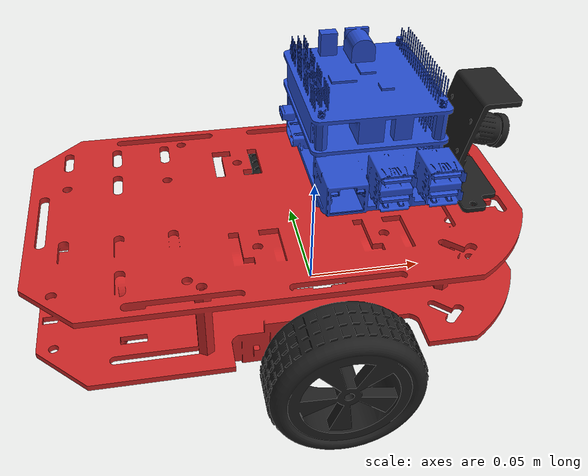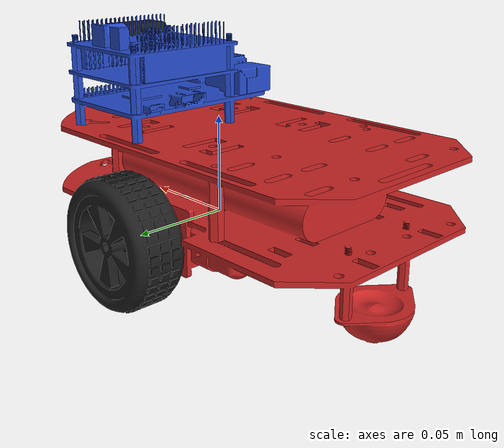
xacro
<?xml version="1.0"?>
<robot name="duckiebot" xmlns:xacro="http://www.ros.org/wiki/xacro">

  <!-- Properties -->
  <xacro:property name="cameraSize" value="0.01"/>
  <xacro:property name="cameraMass" value="0.01"/>
  <xacro:property name="compuMass" value="0.01"/>
  <xacro:property name="PI" value="3.1415926535897931"/>

  <!-- Chassis -->
  <xacro:property name="chassisHeight" value="0.0623"/>
  <xacro:property name="chassisLength" value="0.198"/>
  <xacro:property name="chassisWidth" value="0.119"/>
  <xacro:property name="chassisMass" value="0.15"/>

  <!-- Caster -->
  <xacro:property name="casterRadius" value="0.021"/>
  <xacro:property name="casterMass" value="0.09"/>
  <xacro:property name="casterOffsetX" value="0.091"/>

  <!-- Wheels -->
  <xacro:property name="wheelWidth" value="0.026"/>
  <xacro:property name="wheelRadius" value="0.032"/>
  <xacro:property name="wheelMass" value="0.05"/>
  <xacro:property name="wheelOffsetY" value="0.037"/>

  <!-- Gazebo Materials -->
  <xacro:include filename="$(find duckiebot_description)/urdf/materials.xacro"/>
  <xacro:include filename="$(find duckiebot_description)/urdf/macros.xacro"/>
  <xacro:include filename="$(find duckiebot_description)/urdf/duckiebot.gazebo"/>

  <link name="base_link"/>

  <joint name="base_link_to_chassis" type="fixed">
    <parent link="base_link"/>
    <child link="chassis"/>
    <origin xyz="0 0 0" rpy="0 0 0"/>
  </joint>

  <!-- ======================= CHASSIS ======================= -->
  <link name="chassis">
    <inertial>
      <mass value="${chassisMass}"/>
      <origin xyz="-0.05 0 0"/>
      <inertia ixx="1.56167e-05" ixy="0" ixz="0"
               iyy="1.56167e-05" iyz="0"
               izz="2.56e-05"/>
    </inertial>

    <visual>
      <origin xyz="0 0 0"/>
      <geometry>
        <mesh filename="package://duckiebot_description/meshes/duckiebotFrame.dae"/>
      </geometry>
      <material name="red"/>
    </visual>

    <collision>
      <origin xyz="0 0 0"/>
      <geometry>
        <mesh filename="package://duckiebot_description/meshes/duckiebotFrame.dae"/>
      </geometry>
    </collision>
  </link>

  <!-- ======================= WHEELS ======================= -->
  <link name="left_wheel">
    <inertial>
      <mass value="${wheelMass}"/>
      <origin xyz="0 0 0"/>
      <inertia ixx="0.561e-05" iyy="0.561e-05" izz="1.56e-05" ixy="0" ixz="0" iyz="0"/>
    </inertial>

    <visual>
      <origin xyz="0 -0.07 0"/>
      <geometry>
        <mesh filename="package://duckiebot_description/meshes/duckiebot_leftwheel.dae"/>
      </geometry>
      <material name="black"/>
    </visual>

    <collision>
      <origin xyz="0 -0.07 0"/>
      <geometry>
        <mesh filename="package://duckiebot_description/meshes/duckiebot_leftwheel.dae"/>
      </geometry>
    </collision>
  </link>

  <link name="right_wheel">
    <inertial>
      <mass value="${wheelMass}"/>
      <origin xyz="0 0 0"/>
      <inertia ixx="0.561e-05" iyy="0.561e-05" izz="1.56e-05" ixy="0" ixz="0" iyz="0"/>
    </inertial>

    <visual>
      <origin xyz="0 0.07 0"/>
      <geometry>
        <mesh filename="package://duckiebot_description/meshes/duckiebot_rightwheel.dae"/>
      </geometry>
      <material name="black"/>
    </visual>

    <collision>
      <origin xyz="0 0.07 0"/>
      <geometry>
        <mesh filename="package://duckiebot_description/meshes/duckiebot_rightwheel.dae"/>
      </geometry>
    </collision>
  </link>

  <!-- Wheel joints -->
  <joint type="continuous" name="left_wheel_hinge">
    <parent link="chassis"/>
    <child link="left_wheel"/>
    <origin xyz="0 0.07 0"/>
    <axis xyz="0 1 0"/>
  </joint>

  <joint type="continuous" name="right_wheel_hinge">
    <parent link="chassis"/>
    <child link="right_wheel"/>
    <origin xyz="0 -0.07 0"/>
    <axis xyz="0 1 0"/>
  </joint>

  <!-- ======================= COMPUTER ======================= -->
  <link name="computer">
    <inertial>
      <mass value="${compuMass}"/>
      <origin xyz="0 0 0"/>
      <inertia ixx="1e-6" ixy="0" ixz="0" iyy="1e-6" iyz="0" izz="1e-6"/>
    </inertial>

    <visual>
      <geometry>
        <mesh filename="package://duckiebot_description/meshes/duckiebot_computer.dae"/>
      </geometry>
      <material name="blue"/>
    </visual>

    <collision>
      <geometry>
        <mesh filename="package://duckiebot_description/meshes/duckiebot_computer.dae"/>
      </geometry>
    </collision>
  </link>

  <joint name="computer_joint" type="fixed">
    <parent link="chassis"/>
    <child link="computer"/>
  </joint>

  <!-- ======================= IMU (FIXED + WORKING) ======================= -->
  <link name="imu_link">
    <inertial>
      <mass value="0.01"/>
      <origin xyz="0 0 0"/>
      <inertia ixx="1e-6" ixy="0" ixz="0" iyy="1e-6" iyz="0" izz="1e-6"/>
    </inertial>

    <visual>
      <geometry>
        <box size="0.01 0.01 0.01"/>
      </geometry>
      <material name="blue"/>
    </visual>

    <collision>
      <geometry>
        <box size="0.01 0.01 0.01"/>
      </geometry>
    </collision>
  </link>

  <joint name="imu_joint" type="fixed">
    <parent link="computer"/>
    <child link="imu_link"/>
    <origin xyz="0 0 0.02"/>
  </joint>

  <gazebo reference="imu_link">
    <sensor type="imu" name="imu_sensor">
      <always_on>true</always_on>
      <update_rate>50</update_rate>

      <imu>
        <angular_velocity>
          <x>
            <noise type="gaussian">
              <mean>0.0</mean>
              <stddev>0.0</stddev>
            </noise>
          </x>
          <y>
            <noise type="gaussian">
              <mean>0.0</mean>
              <stddev>0.0</stddev>
            </noise>
          </y>
          <z>
            <noise type="gaussian">
              <mean>0.0</mean>
              <stddev>0.0</stddev>
            </noise>
          </z>
        </angular_velocity>
        <linear_acceleration>
          <x>
            <noise type="gaussian">
              <mean>0.0</mean>
              <stddev>0.0</stddev>
            </noise>
          </x>
          <y>
            <noise type="gaussian">
              <mean>0.0</mean>
              <stddev>0.0</stddev>
            </noise>
          </y>
          <z>
            <noise type="gaussian">
              <mean>0.0</mean>
              <stddev>0.0</stddev>
            </noise>
          </z>
        </linear_acceleration>
      </imu>

      <plugin name="imu_plugin" filename="libgazebo_ros_imu_sensor.so">
        <ros>
          <namespace>duckiebot/imu</namespace>
          <remapping>~/out:=data</remapping>
        </ros>
        <initial_orientation_as_reference>false</initial_orientation_as_reference>
      </plugin>
    </sensor>
  </gazebo>

  <!-- ======================= CAMERA ======================= -->
  <link name="camera">
    <inertial>
      <mass value="${cameraMass}"/>
      <origin xyz="0 0 0"/>
      <inertia ixx="1e-6" ixy="0" ixz="0" iyy="1e-6" iyz="0" izz="1e-6"/>
    </inertial>

    <visual>
      <origin xyz="-0.05 0 -0.055" rpy="0 -0.1 0"/>
      <geometry>
        <mesh filename="package://duckiebot_description/meshes/duckiebot_camera.dae"/>
      </geometry>
      <material name="black"/>
    </visual>

    <collision>
      <origin xyz="-0.05 0 -0.055" rpy="0 -0.1 0"/>
      <geometry>
        <mesh filename="package://duckiebot_description/meshes/duckiebot_camera.dae"/>
      </geometry>
    </collision>
  </link>

  <joint name="camera_joint" type="fixed">
    <parent link="chassis"/>
    <child link="camera"/>
    <origin xyz="0.05 0 0.05" rpy="0 0.1 0"/>
  </joint>

<!-- Transmissions for wheel joints -->

  <!-- Gazebo ROS Control plugin -->

</robot>
